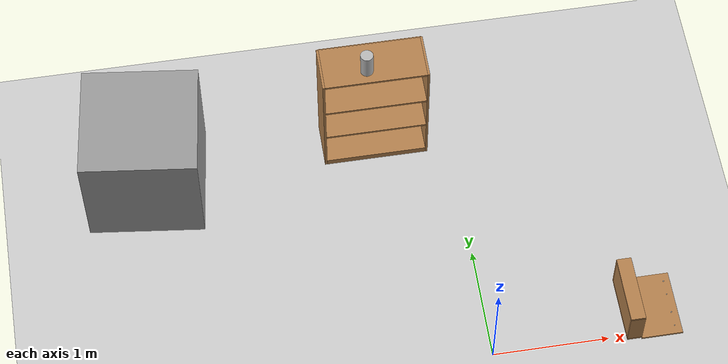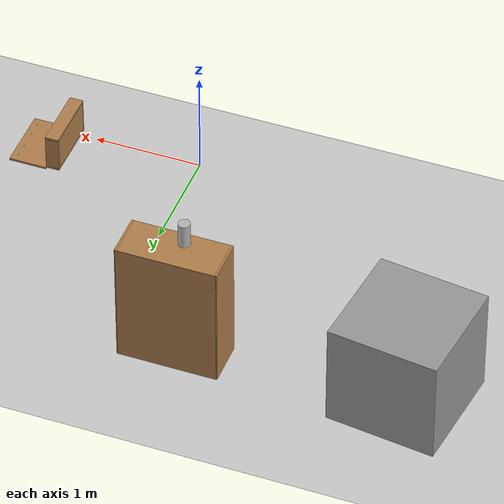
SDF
<sdf version="1.6">
 <world name="default">
  <light name="sun" type="directional">
   <pose>0 0 10 0 -0 0</pose>
   <diffuse>0.8 0.8 0.8 1</diffuse>
   <specular>0.2 0.2 0.2 1</specular>
   <attenuation>
    <range>1000</range>
    <constant>0.9</constant>
    <linear>0.01</linear>
    <quadratic>0.001</quadratic>
   </attenuation>
   <direction>-0.5 0.1 -0.9</direction>
  </light>
  <model name="ground_plane">
   <static>1</static>
   <link name="link">
    <collision name="collision">
     <geometry><plane><normal>0 0 1</normal><size>100 100</size></plane></geometry>
     <surface>
      <contact><collide_bitmask>65535</collide_bitmask></contact>
      <friction><ode><mu>100</mu><mu2>50</mu2></ode></friction>
     </surface>
    </collision>
    <visual name="visual">
     <cast_shadows>0</cast_shadows>
     <geometry><plane><normal>0 0 1</normal><size>100 100</size></plane></geometry>
     <material>
      <script><uri>file://media/materials/scripts/gazebo.material</uri><name>Gazebo/Grey</name></script>
     </material>
    </visual>
   </link>
  </model>
  <gravity>0 0 -9.8</gravity>
  <magnetic_field>6e-06 2.3e-05 -4.2e-05</magnetic_field>
  <atmosphere type="adiabatic"/>
  <physics name="default_physics" default="0" type="ode">
   <max_step_size>0.001</max_step_size>
   <real_time_factor>1</real_time_factor>
   <real_time_update_rate>1000</real_time_update_rate>
  </physics>
  <scene><ambient>0.4 0.4 0.4 1</ambient><background>0.7 0.7 0.7 1</background><shadows>1</shadows></scene>
  <audio><device>default</device></audio>
  <spherical_coordinates>
   <surface_model>EARTH_WGS84</surface_model>
   <latitude_deg>0</latitude_deg>
   <longitude_deg>0</longitude_deg>
   <elevation>0</elevation>
   <heading_deg>0</heading_deg>
  </spherical_coordinates>
  <model name="unit_box">
   <pose>-2.69428 2.15645 0.499995 0 -1e-05 -0.120832</pose>
   <link name="link">
    <inertial>
     <mass>1</mass>
     <inertia>
      <ixx>0.166667</ixx>
      <ixy>0</ixy>
      <ixz>0</ixz>
      <iyy>0.166667</iyy>
      <iyz>0</iyz>
      <izz>0.166667</izz>
     </inertia>
    </inertial>
    <collision name="collision"><geometry><box><size>1 1 1</size></box></geometry></collision>
    <visual name="visual">
     <geometry><box><size>1 1 1</size></box></geometry>
     <material>
      <script><name>Gazebo/Grey</name><uri>file://media/materials/scripts/gazebo.material</uri></script>
     </material>
    </visual>
   </link>
  </model>
  <model name="bookshelf">
   <static>1</static>
   <link name="link">
    <inertial><mass>1</mass></inertial>
    <collision name="back">
     <pose>0 0.005 0.6 0 -0 0</pose>
     <geometry><box><size>0.9 0.01 1.2</size></box></geometry>
    </collision>
    <visual name="visual1">
     <pose>0 0.005 0.6 0 -0 0</pose>
     <geometry><box><size>0.9 0.01 1.2</size></box></geometry>
     <material>
      <script><uri>file://media/materials/scripts/gazebo.material</uri><name>Gazebo/Wood</name></script>
     </material>
    </visual>
    <collision name="left_side">
     <pose>0.45 -0.195 0.6 0 -0 0</pose>
     <geometry><box><size>0.02 0.4 1.2</size></box></geometry>
    </collision>
    <visual name="visual2">
     <pose>0.45 -0.195 0.6 0 -0 0</pose>
     <geometry><box><size>0.02 0.4 1.2</size></box></geometry>
     <material>
      <script><uri>file://media/materials/scripts/gazebo.material</uri><name>Gazebo/Wood</name></script>
     </material>
    </visual>
    <collision name="right_side">
     <pose>-0.45 -0.195 0.6 0 -0 0</pose>
     <geometry><box><size>0.02 0.4 1.2</size></box></geometry>
    </collision>
    <visual name="visual3">
     <pose>-0.45 -0.195 0.6 0 -0 0</pose>
     <geometry><box><size>0.02 0.4 1.2</size></box></geometry>
     <material>
      <script><uri>file://media/materials/scripts/gazebo.material</uri><name>Gazebo/Wood</name></script>
     </material>
    </visual>
    <collision name="bottom">
     <pose>0 -0.195 0.03 0 -0 0</pose>
     <geometry><box><size>0.88 0.4 0.06</size></box></geometry>
    </collision>
    <visual name="visual4">
     <pose>0 -0.195 0.03 0 -0 0</pose>
     <geometry><box><size>0.88 0.4 0.06</size></box></geometry>
     <material>
      <script><uri>file://media/materials/scripts/gazebo.material</uri><name>Gazebo/Wood</name></script>
     </material>
    </visual>
    <collision name="top">
     <pose>0 -0.195 1.19 0 -0 0</pose>
     <geometry><box><size>0.88 0.4 0.02</size></box></geometry>
    </collision>
    <visual name="visual5">
     <pose>0 -0.195 1.19 0 -0 0</pose>
     <geometry><box><size>0.88 0.4 0.02</size></box></geometry>
     <material>
      <script><uri>file://media/materials/scripts/gazebo.material</uri><name>Gazebo/Wood</name></script>
     </material>
    </visual>
    <collision name="low_shelf">
     <pose>0 -0.195 0.43 0 -0 0</pose>
     <geometry><box><size>0.88 0.4 0.02</size></box></geometry>
    </collision>
    <visual name="visual6">
     <pose>0 -0.195 0.43 0 -0 0</pose>
     <geometry><box><size>0.88 0.4 0.02</size></box></geometry>
     <material>
      <script><uri>file://media/materials/scripts/gazebo.material</uri><name>Gazebo/Wood</name></script>
     </material>
    </visual>
    <collision name="high_shelf">
     <pose>0 -0.195 0.8 0 -0 0</pose>
     <geometry><box><size>0.88 0.4 0.02</size></box></geometry>
    </collision>
    <visual name="visual7">
     <pose>0 -0.195 0.8 0 -0 0</pose>
     <geometry><box><size>0.88 0.4 0.02</size></box></geometry>
     <material>
      <script><uri>file://media/materials/scripts/gazebo.material</uri><name>Gazebo/Wood</name></script>
     </material>
    </visual>
   </link>
   <pose>-0.665571 2.49196 0 0 -0 0</pose>
  </model>
  <model name="beer">
   <link name="link">
    <pose>0 0 0.115 0 -0 0</pose>
    <inertial>
     <mass>0.39</mass>
     <inertia><ixx>0.00058</ixx><ixy>0</ixy><ixz>0</ixz><iyy>0.00058</iyy><iyz>0</iyz><izz>0.00019</izz></inertia>
    </inertial>
    <collision name="collision">
     <geometry><cylinder><radius>0.055</radius><length>0.23</length></cylinder></geometry>
    </collision>
    <visual name="visual">
     <geometry><cylinder><radius>0.055</radius><length>0.23</length></cylinder></geometry>
     <material>
      <script>
       <uri>model://beer/materials/scripts</uri>
       <uri>model://beer/materials/textures</uri>
       <name>Beer/Diffuse</name>
      </script>
     </material>
    </visual>
   </link>
   <pose>-0.72867 2.21651 1.19999 -1e-06 2.7e-05 0.001827</pose>
  </model>
  <model name="wooden_case">
   <link name="base">
    <pose>0 0 0.024 0 -0 0</pose>
    <inertial>
     <pose>-0.022184 0 0.171592 0 -0 0</pose>
     <mass>3.96264</mass>
     <inertia>
      <ixx>0.213536</ixx>
      <ixy>0</ixy>
      <ixz>0.000779377</ixz>
      <iyy>0.0708943</iyy>
      <iyz>0</iyz>
      <izz>0.154604</izz>
     </inertia>
    </inertial>
    <collision name="collision_back">
     <pose>-0.053975 0 0.1778 0 -0 0</pose>
     <geometry><box><size>0.01905 0.5461 0.3175</size></box></geometry>
     <surface>
      <contact>
       <poissons_ratio>0.347</poissons_ratio>
       <elastic_modulus>8.8e+09</elastic_modulus>
       <ode><kp>100000</kp><kd>100</kd><max_vel>100</max_vel><min_depth>0.001</min_depth></ode>
      </contact>
      <friction>
       <torsional>
        <coefficient>1</coefficient>
        <use_patch_radius>0</use_patch_radius>
        <surface_radius>0.01</surface_radius>
       </torsional>
      </friction>
     </surface>
    </collision>
    <visual name="visual_back">
     <pose>-0.053975 0 0.1778 0 -0 0</pose>
     <geometry><box><size>0.01905 0.5461 0.3175</size></box></geometry>
     <material>
      <script><uri>file://media/materials/scripts/gazebo.material</uri><name>Gazebo/Wood</name></script>
     </material>
    </visual>
    <collision name="collision_bottom">
     <pose>0 0 0.009525 0 -0 0</pose>
     <geometry><box><size>0.127 0.5842 0.01905</size></box></geometry>
     <surface>
      <contact>
       <poissons_ratio>0.347</poissons_ratio>
       <elastic_modulus>8.8e+09</elastic_modulus>
       <ode><kp>100000</kp><kd>100</kd><max_vel>100</max_vel><min_depth>0.001</min_depth></ode>
      </contact>
      <friction>
       <torsional>
        <coefficient>1</coefficient>
        <use_patch_radius>0</use_patch_radius>
        <surface_radius>0.01</surface_radius>
       </torsional>
      </friction>
     </surface>
    </collision>
    <visual name="visual_bottom">
     <pose>0 0 0.009525 0 -0 0</pose>
     <geometry><box><size>0.127 0.5842 0.01905</size></box></geometry>
     <material>
      <script><uri>file://media/materials/scripts/gazebo.material</uri><name>Gazebo/Wood</name></script>
     </material>
    </visual>
    <collision name="collision_top">
     <pose>0 0 0.346075 0 -0 0</pose>
     <geometry><box><size>0.127 0.5842 0.01905</size></box></geometry>
     <surface>
      <contact>
       <poissons_ratio>0.347</poissons_ratio>
       <elastic_modulus>8.8e+09</elastic_modulus>
       <ode><kp>100000</kp><kd>100</kd><max_vel>100</max_vel><min_depth>0.001</min_depth></ode>
      </contact>
      <friction>
       <torsional>
        <coefficient>1</coefficient>
        <use_patch_radius>0</use_patch_radius>
        <surface_radius>0.01</surface_radius>
       </torsional>
      </friction>
     </surface>
    </collision>
    <visual name="visual_top">
     <pose>0 0 0.346075 0 -0 0</pose>
     <geometry><box><size>0.127 0.5842 0.01905</size></box></geometry>
     <material>
      <script><uri>file://media/materials/scripts/gazebo.material</uri><name>Gazebo/Wood</name></script>
     </material>
    </visual>
    <collision name="collision_left">
     <pose>0 -0.282575 0.1778 0 -0 0</pose>
     <geometry><box><size>0.127 0.01905 0.3175</size></box></geometry>
     <surface>
      <contact>
       <poissons_ratio>0.347</poissons_ratio>
       <elastic_modulus>8.8e+09</elastic_modulus>
       <ode><kp>100000</kp><kd>100</kd><max_vel>100</max_vel><min_depth>0.001</min_depth></ode>
      </contact>
      <friction>
       <torsional>
        <coefficient>1</coefficient>
        <use_patch_radius>0</use_patch_radius>
        <surface_radius>0.01</surface_radius>
       </torsional>
      </friction>
     </surface>
    </collision>
    <visual name="visual_left">
     <pose>0 -0.282575 0.1778 0 -0 0</pose>
     <geometry><box><size>0.127 0.01905 0.3175</size></box></geometry>
     <material>
      <script><uri>file://media/materials/scripts/gazebo.material</uri><name>Gazebo/Wood</name></script>
     </material>
    </visual>
    <collision name="collision_right">
     <pose>0 0.282575 0.1778 0 -0 0</pose>
     <geometry><box><size>0.127 0.01905 0.3175</size></box></geometry>
     <surface>
      <contact>
       <poissons_ratio>0.347</poissons_ratio>
       <elastic_modulus>8.8e+09</elastic_modulus>
       <ode><kp>100000</kp><kd>100</kd><max_vel>100</max_vel><min_depth>0.001</min_depth></ode>
      </contact>
      <friction>
       <torsional>
        <coefficient>1</coefficient>
        <use_patch_radius>0</use_patch_radius>
        <surface_radius>0.01</surface_radius>
       </torsional>
      </friction>
     </surface>
    </collision>
    <visual name="visual_right">
     <pose>0 0.282575 0.1778 0 -0 0</pose>
     <geometry><box><size>0.127 0.01905 0.3175</size></box></geometry>
     <material>
      <script><uri>file://media/materials/scripts/gazebo.material</uri><name>Gazebo/Wood</name></script>
     </material>
    </visual>
    <collision name="collision_block_left">
     <pose>0.0095 -0.2151 -0.012 0 -0 0</pose>
     <geometry><box><size>0.108 0.05 0.024</size></box></geometry>
     <surface>
      <contact>
       <poissons_ratio>0.347</poissons_ratio>
       <elastic_modulus>8.8e+09</elastic_modulus>
       <ode><kp>100000</kp><kd>100</kd><max_vel>100</max_vel><min_depth>0.001</min_depth></ode>
      </contact>
      <friction>
       <torsional>
        <coefficient>1</coefficient>
        <use_patch_radius>0</use_patch_radius>
        <surface_radius>0.01</surface_radius>
       </torsional>
      </friction>
     </surface>
    </collision>
    <visual name="visual_block_left">
     <pose>0.0095 -0.2151 -0.012 0 -0 0</pose>
     <geometry><box><size>0.108 0.05 0.024</size></box></geometry>
     <material>
      <script><uri>file://media/materials/scripts/gazebo.material</uri><name>Gazebo/Wood</name></script>
     </material>
    </visual>
    <collision name="collision_block_right">
     <pose>0.0095 0.2151 -0.012 0 -0 0</pose>
     <geometry><box><size>0.108 0.05 0.024</size></box></geometry>
     <surface>
      <contact>
       <poissons_ratio>0.347</poissons_ratio>
       <elastic_modulus>8.8e+09</elastic_modulus>
       <ode><kp>100000</kp><kd>100</kd><max_vel>100</max_vel><min_depth>0.001</min_depth></ode>
      </contact>
      <friction>
       <torsional>
        <coefficient>1</coefficient>
        <use_patch_radius>0</use_patch_radius>
        <surface_radius>0.01</surface_radius>
       </torsional>
      </friction>
     </surface>
    </collision>
    <visual name="visual_block_right">
     <pose>0.0095 0.2151 -0.012 0 -0 0</pose>
     <geometry><box><size>0.108 0.05 0.024</size></box></geometry>
     <material>
      <script><uri>file://media/materials/scripts/gazebo.material</uri><name>Gazebo/Wood</name></script>
     </material>
    </visual>
   </link>
   <link name="lid">
    <pose>0.243775 0 0.009525 0 -0 0</pose>
    <inertial>
     <mass>1.97874</mass>
     <inertia>
      <ixx>0.0563367</ixx>
      <ixy>0</ixy>
      <ixz>0</ixz>
      <iyy>0.020911</iyy>
      <iyz>0</iyz>
      <izz>0.0771281</izz>
     </inertia>
    </inertial>
    <collision name="collision">
     <geometry><box><size>0.3556 0.5842 0.01905</size></box></geometry>
     <surface>
      <contact>
       <poissons_ratio>0.347</poissons_ratio>
       <elastic_modulus>8.8e+09</elastic_modulus>
       <ode><kp>100000</kp><kd>100</kd><max_vel>100</max_vel><min_depth>0.001</min_depth></ode>
      </contact>
      <friction>
       <torsional>
        <coefficient>1</coefficient>
        <use_patch_radius>0</use_patch_radius>
        <surface_radius>0.01</surface_radius>
       </torsional>
      </friction>
     </surface>
    </collision>
    <visual name="visual">
     <geometry><box><size>0.3556 0.5842 0.01905</size></box></geometry>
     <material>
      <script><uri>file://media/materials/scripts/gazebo.material</uri><name>Gazebo/Wood</name></script>
     </material>
    </visual>
    <visual name="tee_nut_1">
     <pose>0.122 -0.216 0 0 -0 0</pose>
     <geometry><cylinder><radius>0.00635</radius><length>0.0192405</length></cylinder></geometry>
     <material>
      <script><uri>file://media/materials/scripts/gazebo.material</uri><name>Gazebo/Grey</name></script>
     </material>
    </visual>
    <visual name="tee_nut_2">
     <pose>0.122 -0.088 0 0 -0 0</pose>
     <geometry><cylinder><radius>0.00635</radius><length>0.0192405</length></cylinder></geometry>
     <material>
      <script><uri>file://media/materials/scripts/gazebo.material</uri><name>Gazebo/Grey</name></script>
     </material>
    </visual>
    <visual name="tee_nut_3">
     <pose>0.122 0.088 0 0 -0 0</pose>
     <geometry><cylinder><radius>0.00635</radius><length>0.0192405</length></cylinder></geometry>
     <material>
      <script><uri>file://media/materials/scripts/gazebo.material</uri><name>Gazebo/Grey</name></script>
     </material>
    </visual>
    <visual name="tee_nut_4">
     <pose>0.122 0.216 0 0 -0 0</pose>
     <geometry><cylinder><radius>0.00635</radius><length>0.0192405</length></cylinder></geometry>
     <material>
      <script><uri>file://media/materials/scripts/gazebo.material</uri><name>Gazebo/Grey</name></script>
     </material>
    </visual>
   </link>
   <joint name="lid_hinge" type="revolute">
    <pose>-0.1778 0 0.01905 0 -0 0</pose>
    <parent>base</parent>
    <child>lid</child>
    <axis>
     <xyz>0 1 0</xyz>
     <limit><upper>0.523599</upper><lower>-1.5708</lower></limit>
     <use_parent_model_frame>0</use_parent_model_frame>
     <dynamics><spring_reference>0</spring_reference><spring_stiffness>0</spring_stiffness></dynamics>
    </axis>
   </joint>
   <pose>1.20753 0.244857 -0.001057 0 -0.000427 0</pose>
  </model>
 </world>
</sdf>
